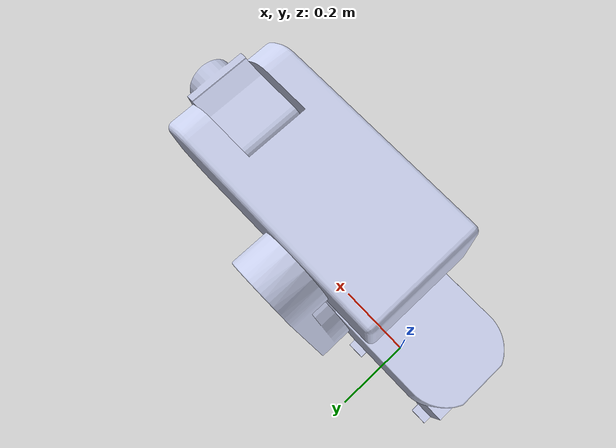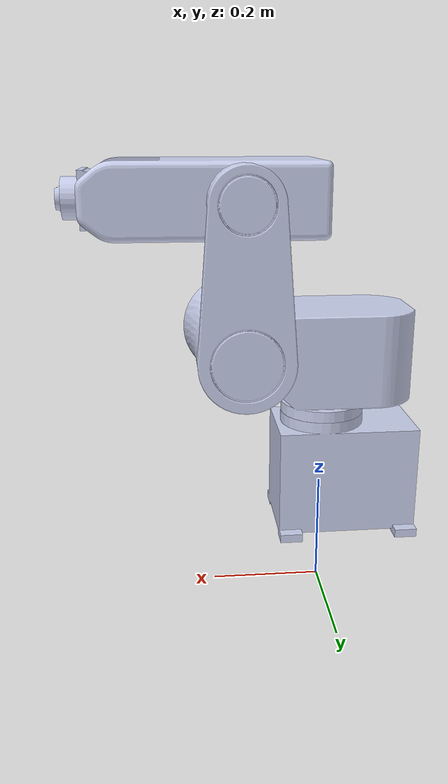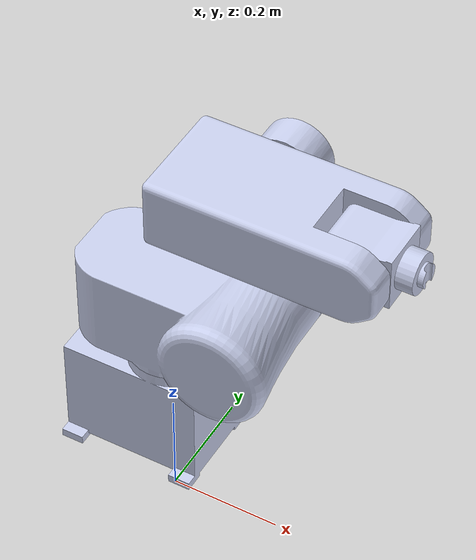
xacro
<?xml version="1.0" encoding="utf-8"?>
<robot xmlns:xacro="http://www.ros.org/wiki/xacro" name="five_robot_arm">

  <!-- Define the world link -->
  <link name="world"/>

  <!-- Define the base joint -->
  <joint name="base_joint" type="fixed">
      <parent link="world"/>
      <child link="base_link"/>
      <origin xyz="0 0 0.13" rpy="0 0 0"/>
  </joint>

  <link
    name="base_link">
    <inertial>
      <origin
        xyz="-0.038074 4.2371E-16 0.10028"
        rpy="0 0 0" />
      <mass
        value="7.6348" />
      <inertia
        ixx="0.04126"
        ixy="-9.6584E-17"
        ixz="-0.0015068"
        iyy="0.066134"
        iyz="-4.8089E-17"
        izz="0.053741" />
    </inertial>
    <visual>
      <origin
        xyz="0 0 0"
        rpy="0 0 0" />
      <geometry>
        <mesh
          filename="package://Robot_5Dof_urdf/meshes/base_link.STL" />
      </geometry>
      <material
        name="">
        <color
          rgba="0.79216 0.81961 0.93333 1" />
      </material>
    </visual>
    <collision>
      <origin
        xyz="0 0 0"
        rpy="0 0 0" />
      <geometry>
        <mesh
          filename="package://Robot_5Dof_urdf/meshes/base_link.STL" />
      </geometry>
    </collision>
  </link>

  <link
    name="arm1_link">
    <inertial>
      <origin
        xyz="0.049386 -0.015747 -0.014163"
        rpy="0 0 0" />
      <mass
        value="12.186" />
      <inertia
        ixx="0.076111"
        ixy="0.019589"
        ixz="-0.012279"
        iyy="0.16416"
        iyz="0.0027246"
        izz="0.1802" />
    </inertial>
    <visual>
      <origin
        xyz="0 0 0"
        rpy="0 0 0" />
      <geometry>
        <mesh
          filename="package://Robot_5Dof_urdf/meshes/arm1_link.STL" />
      </geometry>
      <material
        name="">
        <color
          rgba="0.79216 0.81961 0.93333 1" />
      </material>
    </visual>
    <collision>
      <origin
        xyz="0 0 0"
        rpy="0 0 0" />
      <geometry>
        <mesh
          filename="package://Robot_5Dof_urdf/meshes/arm1_link.STL" />
      </geometry>
    </collision>
  </link>

  <joint
    name="arm1_joint"
    type="revolute">
    <origin
      xyz="0 0 0.342"
      rpy="0 0 0" />
    <parent
      link="base_link" />
    <child
      link="arm1_link" />
    <axis
      xyz="0 0 1" />
    <limit
      lower="-2.7925"
      upper="2.7925"
      effort="300"
      velocity="3" />
  </joint>

  <link
    name="arm2_link">
    <inertial>
      <origin
        xyz="-5.3964E-11 0.1008 -0.12657"
        rpy="0 0 0" />
      <mass
        value="1.2324" />
      <inertia
        ixx="0.017845"
        ixy="-4.3741E-11"
        ixz="-1.3525E-12"
        iyy="0.0029438"
        iyz="0.00028868"
        izz="0.019471" />
    </inertial>
    <visual>
      <origin
        xyz="0 0 0"
        rpy="0 0 0" />
      <geometry>
        <mesh
          filename="package://Robot_5Dof_urdf/meshes/arm2_link.STL" />
      </geometry>
      <material
        name="">
        <color
          rgba="0.79216 0.81961 0.93333 1" />
      </material>
    </visual>
    <collision>
      <origin
        xyz="0 0 0"
        rpy="0 0 0" />
      <geometry>
        <mesh
          filename="package://Robot_5Dof_urdf/meshes/arm2_link.STL" />
      </geometry>
    </collision>
  </link>

  <joint
    name="arm2_joint"
    type="revolute">
    <origin
      xyz="0.15 0 0"
      rpy="1.5708 0 0" />
    <parent
      link="arm1_link" />
    <child
      link="arm2_link" />
    <axis
      xyz="0 0 1" />
    <limit
      lower="-2.6529"
      upper="0.576"
      effort="250"
      velocity="3" />
  </joint>

  <link
    name="arm3_link">
    <inertial>
      <origin
        xyz="8.3267E-17 -0.031785 0.0011559"
        rpy="0 0 0" />
      <mass
        value="7.7969" />
      <inertia
        ixx="0.11294"
        ixy="6.6289E-18"
        ixz="-2.3233E-18"
        iyy="0.036228"
        iyz="-3.8644E-05"
        izz="0.095706" />
    </inertial>
    <visual>
      <origin
        xyz="0 0 0"
        rpy="0 0 0" />
      <geometry>
        <mesh
          filename="package://Robot_5Dof_urdf/meshes/arm3_link.STL" />
      </geometry>
      <material
        name="">
        <color
          rgba="0.79216 0.81961 0.93333 1" />
      </material>
    </visual>
    <collision>
      <origin
        xyz="0 0 0"
        rpy="0 0 0" />
      <geometry>
        <mesh
          filename="package://Robot_5Dof_urdf/meshes/arm3_link.STL" />
      </geometry>
    </collision>
  </link>

  <joint
    name="arm3_joint"
    type="revolute">
    <origin
      xyz="0 0.25 0"
      rpy="0 0 1.5708" />
    <parent
      link="arm2_link" />
    <child
      link="arm3_link" />
    <axis
      xyz="0 0 1" />
    <limit
      lower="-1.5708"
      upper="3.6058"
      effort="200"
      velocity="3" />
  </joint>

  <link
    name="arm4_link">
    <inertial>
      <origin
        xyz="-0.012057 -2.2204E-16 1.2642E-15"
        rpy="0 0 0" />
      <mass
        value="0.98798" />
      <inertia
        ixx="0.0012361"
        ixy="-1.0151E-18"
        ixz="3.9451E-20"
        iyy="0.0024255"
        iyz="2.0228E-20"
        izz="0.0023036" />
    </inertial>
    <visual>
      <origin
        xyz="0 0 0"
        rpy="0 0 0" />
      <geometry>
        <mesh
          filename="package://Robot_5Dof_urdf/meshes/arm4_link.STL" />
      </geometry>
      <material
        name="">
        <color
          rgba="0.79216 0.81961 0.93333 1" />
      </material>
    </visual>
    <collision>
      <origin
        xyz="0 0 0"
        rpy="0 0 0" />
      <geometry>
        <mesh
          filename="package://Robot_5Dof_urdf/meshes/arm4_link.STL" />
      </geometry>
    </collision>
  </link>

  <joint
    name="arm4_joint"
    type="revolute">
    <origin
      xyz="0 -0.22 0"
      rpy="0 0 -1.5708" />
    <parent
      link="arm3_link" />
    <child
      link="arm4_link" />
    <axis
      xyz="0 0 1" />
    <limit
      lower="-1.5708"
      upper="1.5708"
      effort="200"
      velocity="3" />
  </joint>

  <link
    name="arm5_link">
    <inertial>
      <origin
        xyz="-1.1102E-16 2.2528E-15 0.071706"
        rpy="0 0 0" />
      <mass
        value="0.0099293" />
      <inertia
        ixx="1.5205E-06"
        ixy="3.7174E-12"
        ixz="1.5019E-22"
        iyy="1.1154E-06"
        iyz="5.5276E-22"
        izz="1.8939E-06" />
    </inertial>
    <visual>
      <origin
        xyz="0 0 0"
        rpy="0 0 0" />
      <geometry>
        <mesh
          filename="package://Robot_5Dof_urdf/meshes/arm5_link.STL" />
      </geometry>
      <material
        name="">
        <color
          rgba="0.79216 0.81961 0.93333 1" />
      </material>
    </visual>
    <collision>
      <origin
        xyz="0 0 0"
        rpy="0 0 0" />
      <geometry>
        <mesh
          filename="package://Robot_5Dof_urdf/meshes/arm5_link.STL" />
      </geometry>
    </collision>
  </link>

  <joint
    name="arm5_joint"
    type="revolute">
    <origin
      xyz="0 0 0"
      rpy="1.5708 0 1.5708" />
    <parent
      link="arm4_link" />
    <child
      link="arm5_link" />
    <axis
      xyz="0 0 1" />
    <limit
      lower="0"
      upper="3.1416"
      effort="150"
      velocity="3" />
  </joint>

  <!-- Include the transmission of each joint -->
  <xacro:include filename="Robot_5Dof_trans.xacro"/>

  <!-- Include the Gazebo plugins -->
  <xacro:include filename="Robot_5Dof_gazebo.xacro"/>

</robot>
